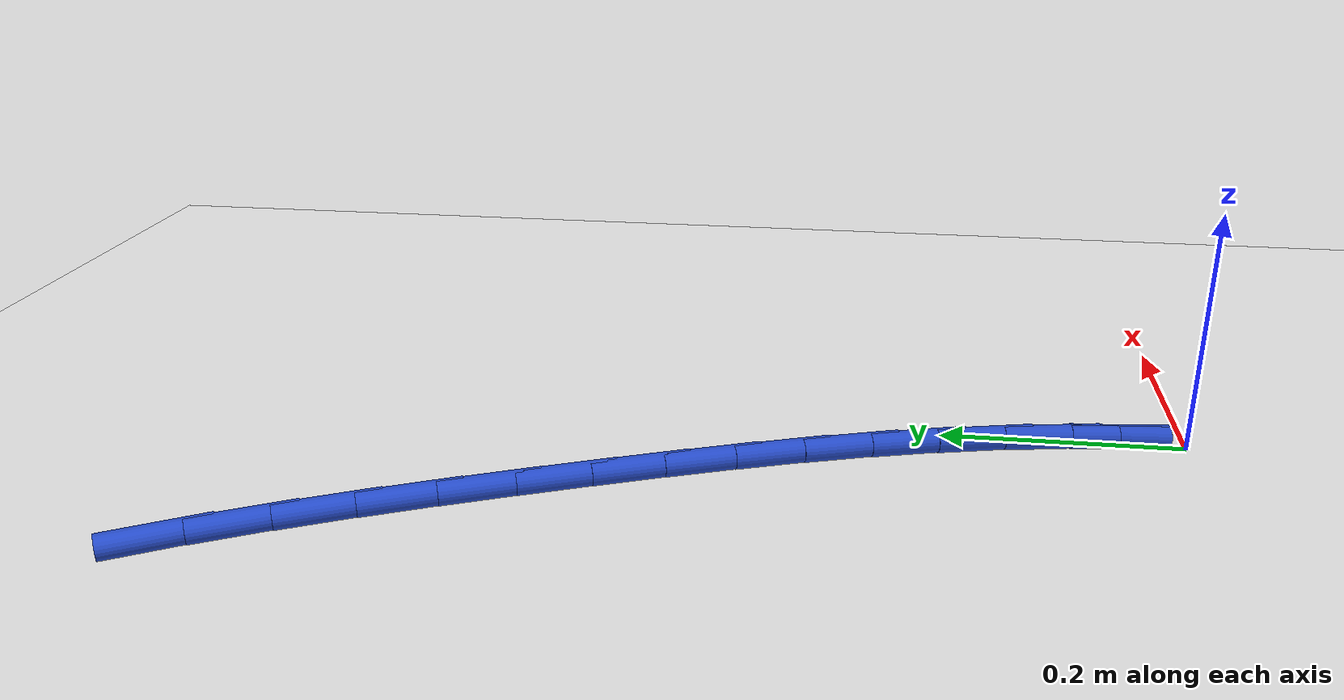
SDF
<sdf version="1.6">
 <world name="default">
  <model name="ground_plane">
   <static>1</static>
   <link name="link">
    <collision name="collision">
     <geometry><plane><normal>0 0 1</normal><size>100 100</size></plane></geometry>
     <surface><friction><ode><mu>100</mu><mu2>50</mu2></ode></friction></surface>
    </collision>
    <visual name="visual">
     <cast_shadows>0</cast_shadows>
     <geometry><plane><normal>0 0 1</normal><size>100 100</size></plane></geometry>
     <material>
      <script><uri>file://media/materials/scripts/gazebo.material</uri><name>Gazebo/WhiteGlow</name></script>
     </material>
    </visual>
   </link>
  </model>
  <model name="line">
   <link name="link_1">
    <pose>-0.003484418893870292 0.0556205212887779 0.01 0 1.57 -1.4439921682034471</pose>
    <collision name="collision">
     <geometry><cylinder><radius>0.01</radius><length>0.08</length></cylinder></geometry>
    </collision>
    <visual name="visual">
     <material>
      <script><name>Gazebo/Blue</name><uri>file://media/materials/scripts/gazebo.material</uri></script>
     </material>
     <geometry><cylinder><radius>0.01</radius><length>0.08</length></cylinder></geometry>
    </visual>
   </link>
   <link name="link_2">
    <pose>-0.010503405762425685 0.11067649451512081 0.01 0 1.57 -1.3859651334937189</pose>
    <collision name="collision">
     <geometry><cylinder><radius>0.01</radius><length>0.08</length></cylinder></geometry>
    </collision>
    <visual name="visual">
     <material>
      <script><name>Gazebo/Blue</name><uri>file://media/materials/scripts/gazebo.material</uri></script>
     </material>
     <geometry><cylinder><radius>0.01</radius><length>0.08</length></cylinder></geometry>
    </visual>
   </link>
   <link name="link_3">
    <pose>-0.02071214126998917 0.16527884536353907 0.01 0 1.57 -1.3347051459230719</pose>
    <collision name="collision">
     <geometry><cylinder><radius>0.01</radius><length>0.08</length></cylinder></geometry>
    </collision>
    <visual name="visual">
     <material>
      <script><name>Gazebo/Blue</name><uri>file://media/materials/scripts/gazebo.material</uri></script>
     </material>
     <geometry><cylinder><radius>0.01</radius><length>0.08</length></cylinder></geometry>
    </visual>
   </link>
   <link name="link_4">
    <pose>-0.03376580608088371 0.21953849951854287 0.01 0 1.57 -1.2904916578188665</pose>
    <collision name="collision">
     <geometry><cylinder><radius>0.01</radius><length>0.08</length></cylinder></geometry>
    </collision>
    <visual name="visual">
     <material>
      <script><name>Gazebo/Blue</name><uri>file://media/materials/scripts/gazebo.material</uri></script>
     </material>
     <geometry><cylinder><radius>0.01</radius><length>0.08</length></cylinder></geometry>
    </visual>
   </link>
   <link name="link_5">
    <pose>-0.04931958085943228 0.2735663826646426 0.01 0 1.57 -1.2533919569965417</pose>
    <collision name="collision">
     <geometry><cylinder><radius>0.01</radius><length>0.08</length></cylinder></geometry>
    </collision>
    <visual name="visual">
     <material>
      <script><name>Gazebo/Blue</name><uri>file://media/materials/scripts/gazebo.material</uri></script>
     </material>
     <geometry><cylinder><radius>0.01</radius><length>0.08</length></cylinder></geometry>
    </visual>
   </link>
   <link name="link_6">
    <pose>-0.06702864626995785 0.3274734204863487 0.01 0 1.57 -1.2233273175247208</pose>
    <collision name="collision">
     <geometry><cylinder><radius>0.01</radius><length>0.08</length></cylinder></geometry>
    </collision>
    <visual name="visual">
     <material>
      <script><name>Gazebo/Blue</name><uri>file://media/materials/scripts/gazebo.material</uri></script>
     </material>
     <geometry><cylinder><radius>0.01</radius><length>0.08</length></cylinder></geometry>
    </visual>
   </link>
   <link name="link_7">
    <pose>-0.08654818297678338 0.38137053866817117 0.01 0 1.57 -1.2001315837408786</pose>
    <collision name="collision">
     <geometry><cylinder><radius>0.01</radius><length>0.08</length></cylinder></geometry>
    </collision>
    <visual name="visual">
     <material>
      <script><name>Gazebo/Blue</name><uri>file://media/materials/scripts/gazebo.material</uri></script>
     </material>
     <geometry><cylinder><radius>0.01</radius><length>0.08</length></cylinder></geometry>
    </visual>
   </link>
   <link name="link_8">
    <pose>-0.10753337164423174 0.43536866289462034 0.01 0 1.57 -1.1835972277901843</pose>
    <collision name="collision">
     <geometry><cylinder><radius>0.01</radius><length>0.08</length></cylinder></geometry>
    </collision>
    <visual name="visual">
     <material>
      <script><name>Gazebo/Blue</name><uri>file://media/materials/scripts/gazebo.material</uri></script>
     </material>
     <geometry><cylinder><radius>0.01</radius><length>0.08</length></cylinder></geometry>
    </visual>
   </link>
   <link name="link_9">
    <pose>-0.12963939293662607 0.48957871885020676 0.01 0 1.57 -1.1724317874281054</pose>
    <collision name="collision">
     <geometry><cylinder><radius>0.01</radius><length>0.08</length></cylinder></geometry>
    </collision>
    <visual name="visual">
     <material>
      <script><name>Gazebo/Blue</name><uri>file://media/materials/scripts/gazebo.material</uri></script>
     </material>
     <geometry><cylinder><radius>0.01</radius><length>0.08</length></cylinder></geometry>
    </visual>
   </link>
   <link name="link_10">
    <pose>-0.1525708023188254 0.5440648709504464 0.01 0 1.57 -1.1587364525490171</pose>
    <collision name="collision">
     <geometry><cylinder><radius>0.01</radius><length>0.08</length></cylinder></geometry>
    </collision>
    <visual name="visual">
     <material>
      <script><name>Gazebo/Blue</name><uri>file://media/materials/scripts/gazebo.material</uri></script>
     </material>
     <geometry><cylinder><radius>0.01</radius><length>0.08</length></cylinder></geometry>
    </visual>
   </link>
   <link name="link_11">
    <pose>-0.17638740692584481 0.5985548362991029 0.01 0 1.57 -1.1390015406403737</pose>
    <collision name="collision">
     <geometry><cylinder><radius>0.01</radius><length>0.08</length></cylinder></geometry>
    </collision>
    <visual name="visual">
     <material>
      <script><name>Gazebo/Blue</name><uri>file://media/materials/scripts/gazebo.material</uri></script>
     </material>
     <geometry><cylinder><radius>0.01</radius><length>0.08</length></cylinder></geometry>
    </visual>
   </link>
   <link name="link_12">
    <pose>-0.2013045361632773 0.6526290419116749 0.01 0 1.57 -1.112958066781425</pose>
    <collision name="collision">
     <geometry><cylinder><radius>0.01</radius><length>0.08</length></cylinder></geometry>
    </collision>
    <visual name="visual">
     <material>
      <script><name>Gazebo/Blue</name><uri>file://media/materials/scripts/gazebo.material</uri></script>
     </material>
     <geometry><cylinder><radius>0.01</radius><length>0.08</length></cylinder></geometry>
    </visual>
   </link>
   <link name="link_13">
    <pose>-0.2275381770900238 0.705867291961585 0.01 0 1.57 -1.0802048746402113</pose>
    <collision name="collision">
     <geometry><cylinder><radius>0.01</radius><length>0.08</length></cylinder></geometry>
    </collision>
    <visual name="visual">
     <material>
      <script><name>Gazebo/Blue</name><uri>file://media/materials/scripts/gazebo.material</uri></script>
     </material>
     <geometry><cylinder><radius>0.01</radius><length>0.08</length></cylinder></geometry>
    </visual>
   </link>
   <link name="link_14">
    <pose>-0.25530431676498544 0.7578493906222559 0.01 0 1.57 -1.040210076271741</pose>
    <collision name="collision">
     <geometry><cylinder><radius>0.01</radius><length>0.08</length></cylinder></geometry>
    </collision>
    <visual name="visual">
     <material>
      <script><name>Gazebo/Blue</name><uri>file://media/materials/scripts/gazebo.material</uri></script>
     </material>
     <geometry><cylinder><radius>0.01</radius><length>0.08</length></cylinder></geometry>
    </visual>
   </link>
   <link name="link_121">
    <pose>-0.003561430571174865 0.05554703330639217 0.01 0 1.57 -1.5067683807191683</pose>
    <collision name="collision">
     <geometry><cylinder><radius>0.01</radius><length>0.08</length></cylinder></geometry>
    </collision>
    <visual name="visual">
     <material>
      <script><name>Gazebo/Blue</name><uri>file://media/materials/scripts/gazebo.material</uri></script>
     </material>
     <geometry><cylinder><radius>0.01</radius><length>0.08</length></cylinder></geometry>
    </visual>
   </link>
  </model>
 </world>
</sdf>
